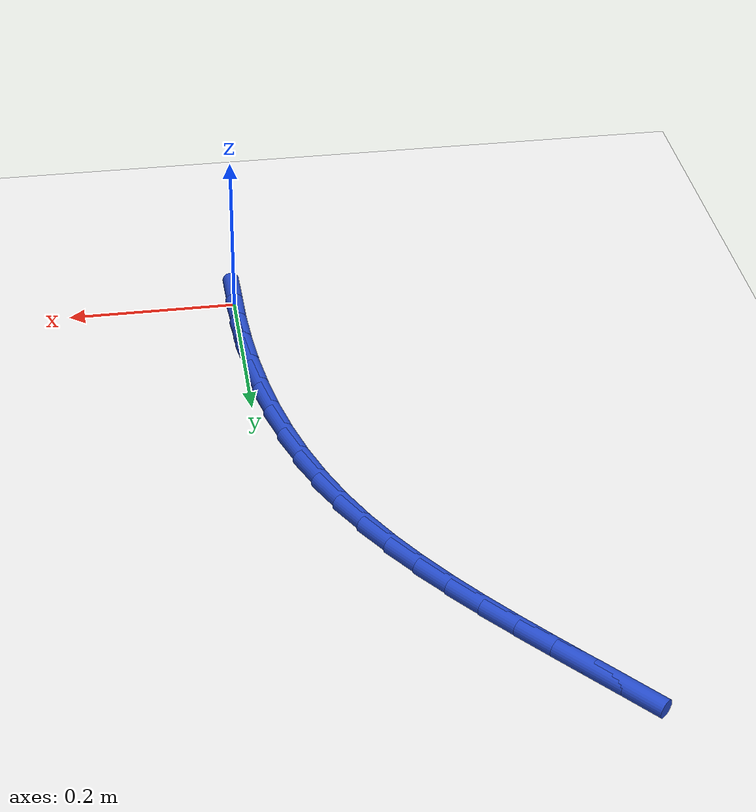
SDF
<sdf version="1.6">
 <world name="default">
  <model name="ground_plane">
   <static>1</static>
   <link name="link">
    <collision name="collision">
     <geometry><plane><normal>0 0 1</normal><size>100 100</size></plane></geometry>
     <surface><friction><ode><mu>100</mu><mu2>50</mu2></ode></friction></surface>
    </collision>
    <visual name="visual">
     <cast_shadows>0</cast_shadows>
     <geometry><plane><normal>0 0 1</normal><size>100 100</size></plane></geometry>
     <material>
      <script><uri>file://media/materials/scripts/gazebo.material</uri><name>Gazebo/WhiteGlow</name></script>
     </material>
    </visual>
   </link>
  </model>
  <model name="line">
   <link name="link_0">
    <pose>4.336808689942018e-18 -1.3877787807814457e-17 0.01 0 1.57 -1.5573718621784105</pose>
    <collision name="collision">
     <geometry><cylinder><radius>0.01</radius><length>0.08</length></cylinder></geometry>
    </collision>
    <visual name="visual">
     <material>
      <script><name>Gazebo/Blue</name><uri>file://media/materials/scripts/gazebo.material</uri></script>
     </material>
     <geometry><cylinder><radius>0.01</radius><length>0.08</length></cylinder></geometry>
    </visual>
   </link>
   <link name="link_1">
    <pose>-0.0005983916359873998 0.04457203367264502 0.01 0 1.57 -1.5188670011490113</pose>
    <collision name="collision">
     <geometry><cylinder><radius>0.01</radius><length>0.08</length></cylinder></geometry>
    </collision>
    <visual name="visual">
     <material>
      <script><name>Gazebo/Blue</name><uri>file://media/materials/scripts/gazebo.material</uri></script>
     </material>
     <geometry><cylinder><radius>0.01</radius><length>0.08</length></cylinder></geometry>
    </visual>
   </link>
   <link name="link_2">
    <pose>-0.0029063172632489377 0.08897566622336017 0.01 0 1.57 -1.4777067448218728</pose>
    <collision name="collision">
     <geometry><cylinder><radius>0.01</radius><length>0.08</length></cylinder></geometry>
    </collision>
    <visual name="visual">
     <material>
      <script><name>Gazebo/Blue</name><uri>file://media/materials/scripts/gazebo.material</uri></script>
     </material>
     <geometry><cylinder><radius>0.01</radius><length>0.08</length></cylinder></geometry>
    </visual>
   </link>
   <link name="link_3">
    <pose>-0.007019723194135353 0.13303556172974781 0.01 0 1.57 -1.4335227655718614</pose>
    <collision name="collision">
     <geometry><cylinder><radius>0.01</radius><length>0.08</length></cylinder></geometry>
    </collision>
    <visual name="visual">
     <material>
      <script><name>Gazebo/Blue</name><uri>file://media/materials/scripts/gazebo.material</uri></script>
     </material>
     <geometry><cylinder><radius>0.01</radius><length>0.08</length></cylinder></geometry>
    </visual>
   </link>
   <link name="link_4">
    <pose>-0.013034555740997373 0.17657638426941008 0.01 0 1.57 -1.385933105360552</pose>
    <collision name="collision">
     <geometry><cylinder><radius>0.01</radius><length>0.08</length></cylinder></geometry>
    </collision>
    <visual name="visual">
     <material>
      <script><name>Gazebo/Blue</name><uri>file://media/materials/scripts/gazebo.material</uri></script>
     </material>
     <geometry><cylinder><radius>0.01</radius><length>0.08</length></cylinder></geometry>
    </visual>
   </link>
   <link name="link_5">
    <pose>-0.021046761216185737 0.21942279791994926 0.01 0 1.57 -1.3345503823095883</pose>
    <collision name="collision">
     <geometry><cylinder><radius>0.01</radius><length>0.08</length></cylinder></geometry>
    </collision>
    <visual name="visual">
     <material>
      <script><name>Gazebo/Blue</name><uri>file://media/materials/scripts/gazebo.material</uri></script>
     </material>
     <geometry><cylinder><radius>0.01</radius><length>0.08</length></cylinder></geometry>
    </visual>
   </link>
   <link name="link_6">
    <pose>-0.0311522859320512 0.26139946675896764 0.01 0 1.57 -1.2789963268459807</pose>
    <collision name="collision">
     <geometry><cylinder><radius>0.01</radius><length>0.08</length></cylinder></geometry>
    </collision>
    <visual name="visual">
     <material>
      <script><name>Gazebo/Blue</name><uri>file://media/materials/scripts/gazebo.material</uri></script>
     </material>
     <geometry><cylinder><radius>0.01</radius><length>0.08</length></cylinder></geometry>
    </visual>
   </link>
   <link name="link_7">
    <pose>-0.04344707620094446 0.3023310548640673 0.01 0 1.57 -1.2189245359871548</pose>
    <collision name="collision">
     <geometry><cylinder><radius>0.01</radius><length>0.08</length></cylinder></geometry>
    </collision>
    <visual name="visual">
     <material>
      <script><name>Gazebo/Blue</name><uri>file://media/materials/scripts/gazebo.material</uri></script>
     </material>
     <geometry><cylinder><radius>0.01</radius><length>0.08</length></cylinder></geometry>
    </visual>
   </link>
   <link name="link_8">
    <pose>-0.058027078335216295 0.34204222631285075 0.01 0 1.57 -1.1540531137541636</pose>
    <collision name="collision">
     <geometry><cylinder><radius>0.01</radius><length>0.08</length></cylinder></geometry>
    </collision>
    <visual name="visual">
     <material>
      <script><name>Gazebo/Blue</name><uri>file://media/materials/scripts/gazebo.material</uri></script>
     </material>
     <geometry><cylinder><radius>0.01</radius><length>0.08</length></cylinder></geometry>
    </visual>
   </link>
   <link name="link_9">
    <pose>-0.07498823864721739 0.38035764518291987 0.01 0 1.57 -1.0858827836086442</pose>
    <collision name="collision">
     <geometry><cylinder><radius>0.01</radius><length>0.08</length></cylinder></geometry>
    </collision>
    <visual name="visual">
     <material>
      <script><name>Gazebo/Blue</name><uri>file://media/materials/scripts/gazebo.material</uri></script>
     </material>
     <geometry><cylinder><radius>0.01</radius><length>0.08</length></cylinder></geometry>
    </visual>
   </link>
   <link name="link_10">
    <pose>-0.0943766519901181 0.4171567272831883 0.01 0 1.57 -1.0228177106142808</pose>
    <collision name="collision">
     <geometry><cylinder><radius>0.01</radius><length>0.08</length></cylinder></geometry>
    </collision>
    <visual name="visual">
     <material>
      <script><name>Gazebo/Blue</name><uri>file://media/materials/scripts/gazebo.material</uri></script>
     </material>
     <geometry><cylinder><radius>0.01</radius><length>0.08</length></cylinder></geometry>
    </visual>
   </link>
   <link name="link_11">
    <pose>-0.11599814226122311 0.4525827774046317 0.01 0 1.57 -0.9680428558615343</pose>
    <collision name="collision">
     <geometry><cylinder><radius>0.01</radius><length>0.08</length></cylinder></geometry>
    </collision>
    <visual name="visual">
     <material>
      <script><name>Gazebo/Blue</name><uri>file://media/materials/scripts/gazebo.material</uri></script>
     </material>
     <geometry><cylinder><radius>0.01</radius><length>0.08</length></cylinder></geometry>
    </visual>
   </link>
   <link name="link_12">
    <pose>-0.1395862384832859 0.4868585016157743 0.01 0 1.57 -0.921997925332311</pose>
    <collision name="collision">
     <geometry><cylinder><radius>0.01</radius><length>0.08</length></cylinder></geometry>
    </collision>
    <visual name="visual">
     <material>
      <script><name>Gazebo/Blue</name><uri>file://media/materials/scripts/gazebo.material</uri></script>
     </material>
     <geometry><cylinder><radius>0.01</radius><length>0.08</length></cylinder></geometry>
    </visual>
   </link>
   <link name="link_13">
    <pose>-0.1648744552800054 0.5202066217995853 0.01 0 1.57 -0.8848145867729409</pose>
    <collision name="collision">
     <geometry><cylinder><radius>0.01</radius><length>0.08</length></cylinder></geometry>
    </collision>
    <visual name="visual">
     <material>
      <script><name>Gazebo/Blue</name><uri>file://media/materials/scripts/gazebo.material</uri></script>
     </material>
     <geometry><cylinder><radius>0.01</radius><length>0.08</length></cylinder></geometry>
    </visual>
   </link>
   <link name="link_14">
    <pose>-0.1915963072750807 0.5528498598390348 0.01 0 1.57 -0.85642039293689</pose>
    <collision name="collision">
     <geometry><cylinder><radius>0.01</radius><length>0.08</length></cylinder></geometry>
    </collision>
    <visual name="visual">
     <material>
      <script><name>Gazebo/Blue</name><uri>file://media/materials/scripts/gazebo.material</uri></script>
     </material>
     <geometry><cylinder><radius>0.01</radius><length>0.08</length></cylinder></geometry>
    </visual>
   </link>
   <link name="link_15">
    <pose>-0.21948530909221053 0.5850109376170919 0.01 0 1.57 -0.8366287324983233</pose>
    <collision name="collision">
     <geometry><cylinder><radius>0.01</radius><length>0.08</length></cylinder></geometry>
    </collision>
    <visual name="visual">
     <material>
      <script><name>Gazebo/Blue</name><uri>file://media/materials/scripts/gazebo.material</uri></script>
     </material>
     <geometry><cylinder><radius>0.01</radius><length>0.08</length></cylinder></geometry>
    </visual>
   </link>
   <link name="link_16">
    <pose>-0.24827497535509394 0.6169125770167263 0.01 0 1.57 -0.8252062401643862</pose>
    <collision name="collision">
     <geometry><cylinder><radius>0.01</radius><length>0.08</length></cylinder></geometry>
    </collision>
    <visual name="visual">
     <material>
      <script><name>Gazebo/Blue</name><uri>file://media/materials/scripts/gazebo.material</uri></script>
     </material>
     <geometry><cylinder><radius>0.01</radius><length>0.08</length></cylinder></geometry>
    </visual>
   </link>
   <link name="link_17">
    <pose>-0.27769882068742996 0.6487774999209076 0.01 0 1.57 -0.8219165124980077</pose>
    <collision name="collision">
     <geometry><cylinder><radius>0.01</radius><length>0.08</length></cylinder></geometry>
    </collision>
    <visual name="visual">
     <material>
      <script><name>Gazebo/Blue</name><uri>file://media/materials/scripts/gazebo.material</uri></script>
     </material>
     <geometry><cylinder><radius>0.01</radius><length>0.08</length></cylinder></geometry>
    </visual>
   </link>
   <link name="link_18">
    <pose>-0.30749035971291716 0.6808284282126049 0.01 0 1.57 -0.8265426815719641</pose>
    <collision name="collision">
     <geometry><cylinder><radius>0.01</radius><length>0.08</length></cylinder></geometry>
    </collision>
    <visual name="visual">
     <material>
      <script><name>Gazebo/Blue</name><uri>file://media/materials/scripts/gazebo.material</uri></script>
     </material>
     <geometry><cylinder><radius>0.01</radius><length>0.08</length></cylinder></geometry>
    </visual>
   </link>
   <link name="link_161">
    <pose>-0.0005718745460896249 0.04457279893389112 0.01 0 1.57 -1.5579669065271122</pose>
    <collision name="collision">
     <geometry><cylinder><radius>0.01</radius><length>0.08</length></cylinder></geometry>
    </collision>
    <visual name="visual">
     <material>
      <script><name>Gazebo/Blue</name><uri>file://media/materials/scripts/gazebo.material</uri></script>
     </material>
     <geometry><cylinder><radius>0.01</radius><length>0.08</length></cylinder></geometry>
    </visual>
   </link>
  </model>
 </world>
</sdf>
